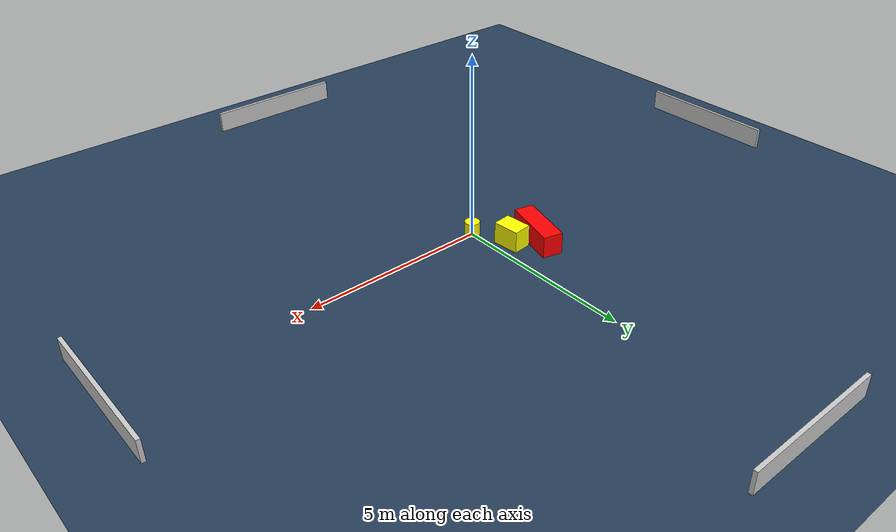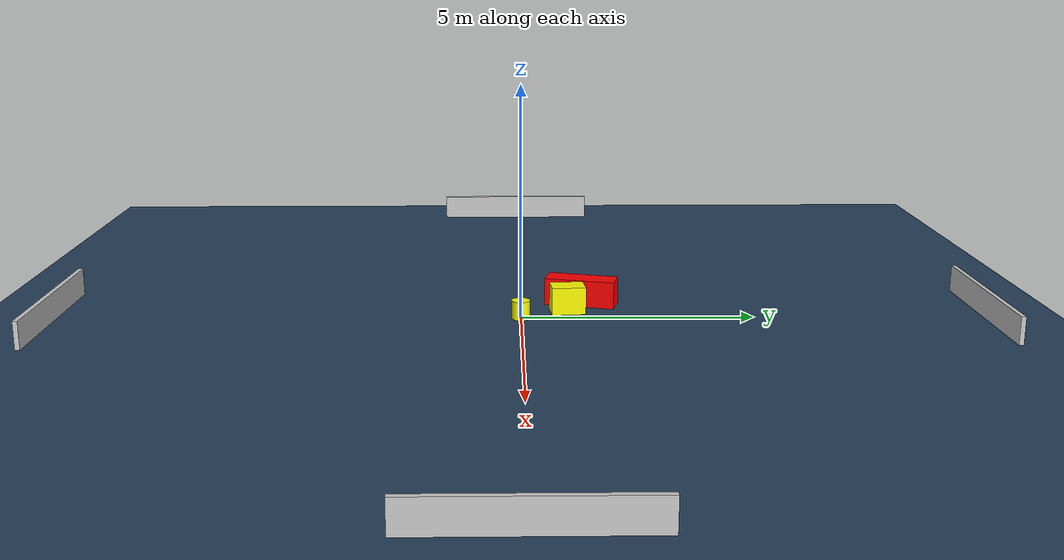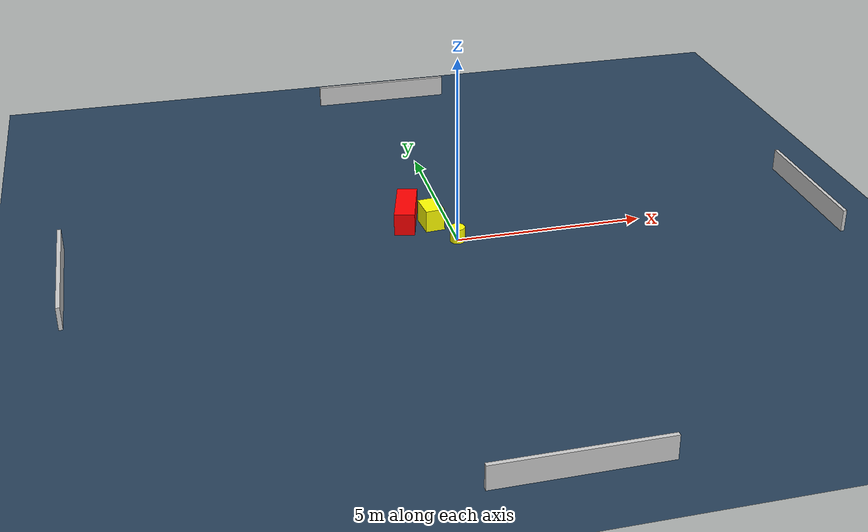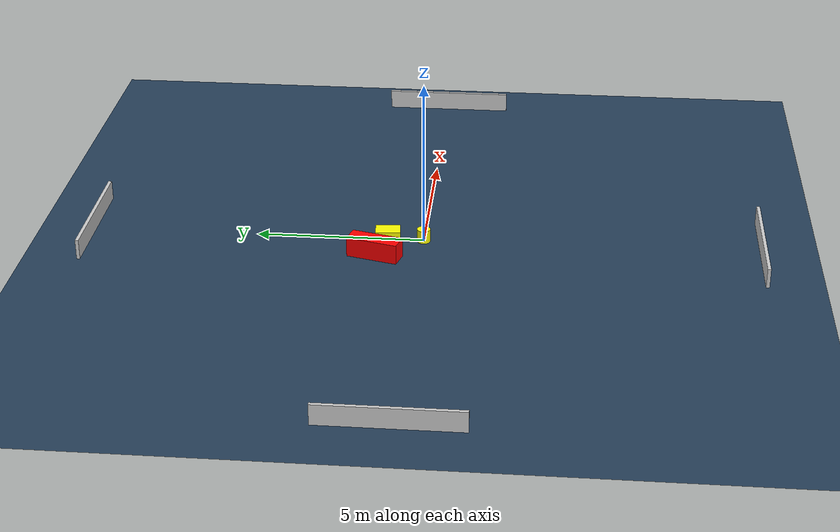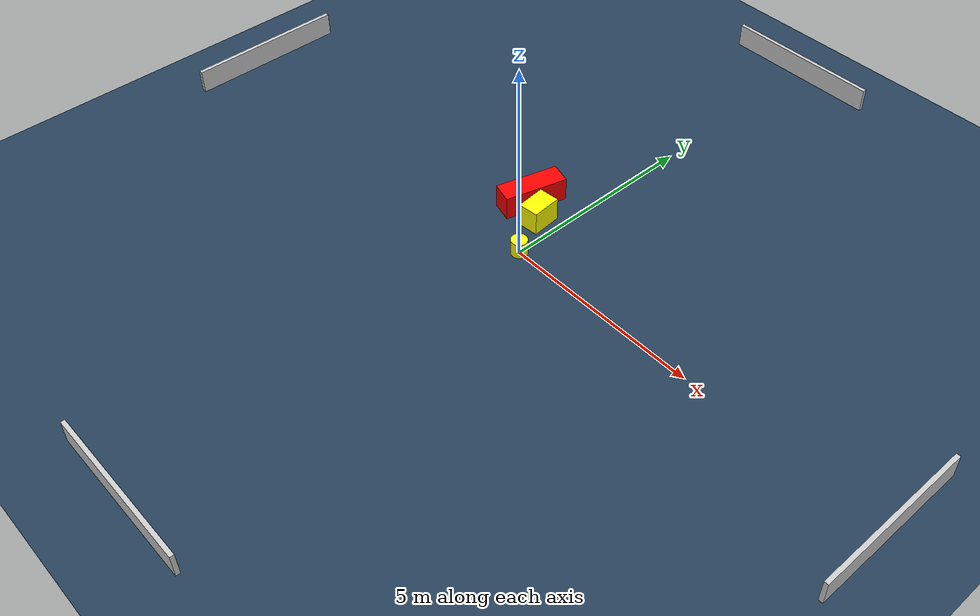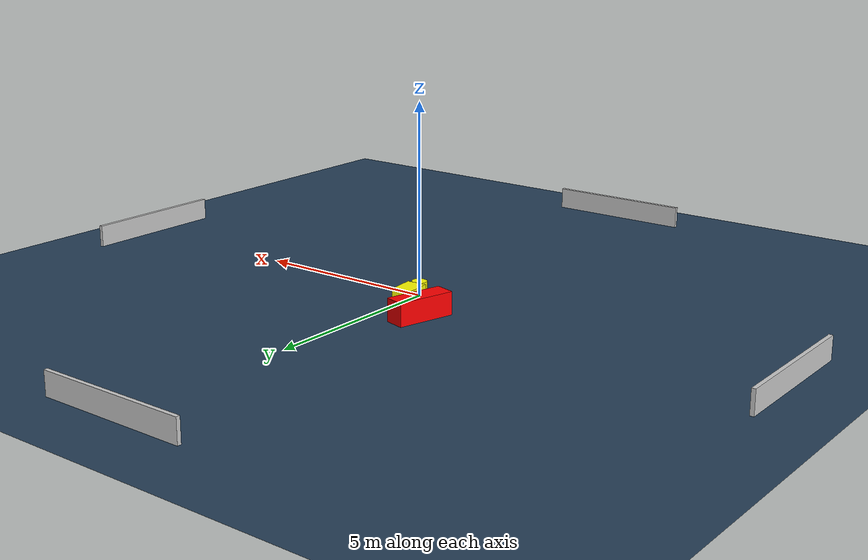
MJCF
<?xml version="1.0" ?>
<mujoco model="generated_environment">
  <option timestep="0.01" integrator="RK4" cone="elliptic"/>
  <default>
    <geom density="1"/>
  </default>
  <asset>
    <texture builtin="gradient" height="3072" name="skybox" rgb1="0.3 0.5 0.7" rgb2="0 0 0" type="skybox" width="512"/>
    <texture builtin="checker" height="300" name="groundplane" rgb1="0.2 0.3 0.4" rgb2="0.1 0.2 0.3" type="2d" width="300"/>
    <material name="groundplane" reflectance="0.2" texrepeat="5 5" texture="groundplane"/>
  </asset>
  <worldbody>
    <light dir="0 0 -1" directional="true" pos="0 0 1.5"/>
    <geom condim="3" friction="0.5 0.005 0.001" material="groundplane" name="floor" pos="0 0 0" size="0 0 0.05" type="plane"/>
    <body name="walls">
      <geom name="wall_1" condim="4" pos="-10.0 0.0 0.3" rgba="0.800000011920929 0.800000011920929 0.800000011920929 1.0" size="0.05 2.0 0.3" type="box"/>
      <geom name="wall_2" condim="4" pos="10.0 0.0 0.3" rgba="0.800000011920929 0.800000011920929 0.800000011920929 1.0" size="0.05 2.0 0.3" type="box"/>
      <geom name="wall_3" condim="4" pos="0.0 -10.0 0.3" rgba="0.800000011920929 0.800000011920929 0.800000011920929 1.0" size="2.0 0.05 0.3" type="box"/>
      <geom name="wall_4" condim="4" pos="0.0 10.0 0.3" rgba="0.800000011920929 0.800000011920929 0.800000011920929 1.0" size="2.0 0.05 0.3" type="box"/>
    </body>
    <body name="robot">
      <joint name="joint_x" type="slide" pos="0 0 0" axis="1 0 0"/>
      <joint name="joint_y" type="slide" pos="0 0 0" axis="0 1 0"/>
      <geom name="robot" type="cylinder" pos="0.0 0.0 0.2" size="0.2 0.2 0.0" mass="5.0" friction="1.0 0.005 0.0001" condim="4" rgba="1.0 1.0 0.0 1.0"/>
    </body>
    <body name="obstacle_1_movable">
      <geom name="obstacle_1_movable" condim="4" pos="-0.4648268265108339 1.0230151936245984 0.3" euler="0 0 275.32975052496045" friction="0.0 0.005 0.001" rgba="1.0 1.0 0.0 1.0" size="0.3667719420868733 0.2553204881328664 0.3" type="box" mass="0.1"/>
      <joint type="free"/>
    </body>
    <body name="obstacle_2_static">
      <geom name="obstacle_2_static" condim="4" pos="-1.0743208471834305 1.3598535542194825 0.3" euler="0 0 344.8977207588805" friction="0.0 0.005 0.001" rgba="1.0 0.0 0.0 1.0" size="0.2694493993422018 0.776975269950126 0.3" type="box"/>
    </body>
  </worldbody>
  <actuator>
    <motor name="actuator_x" joint="joint_x" gear="1" ctrlrange="-1 1"/>
    <motor name="actuator_y" joint="joint_y" gear="1" ctrlrange="-1 1"/>
  </actuator>
</mujoco>
